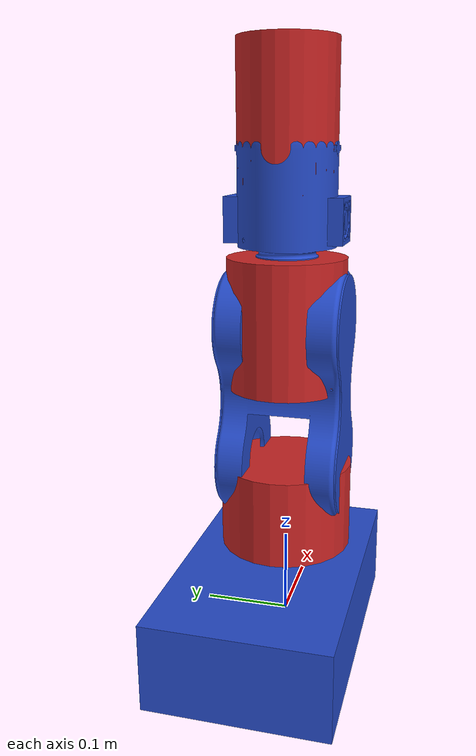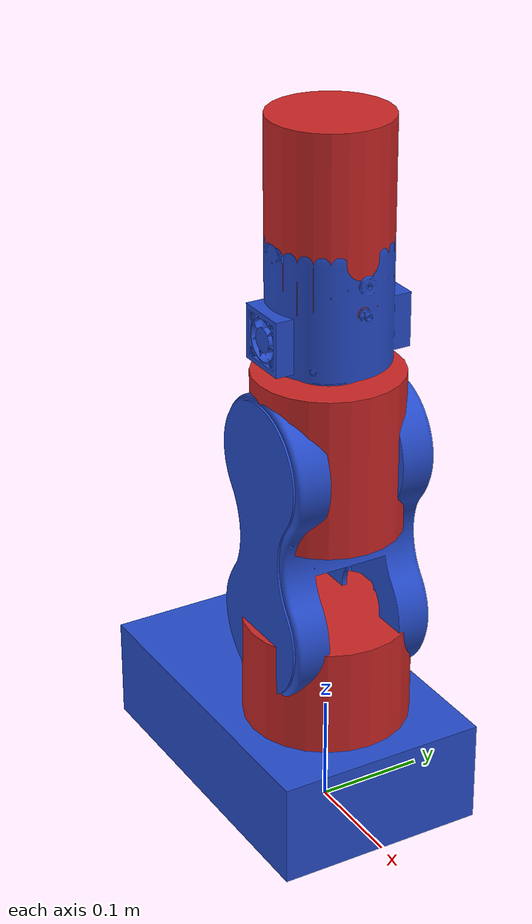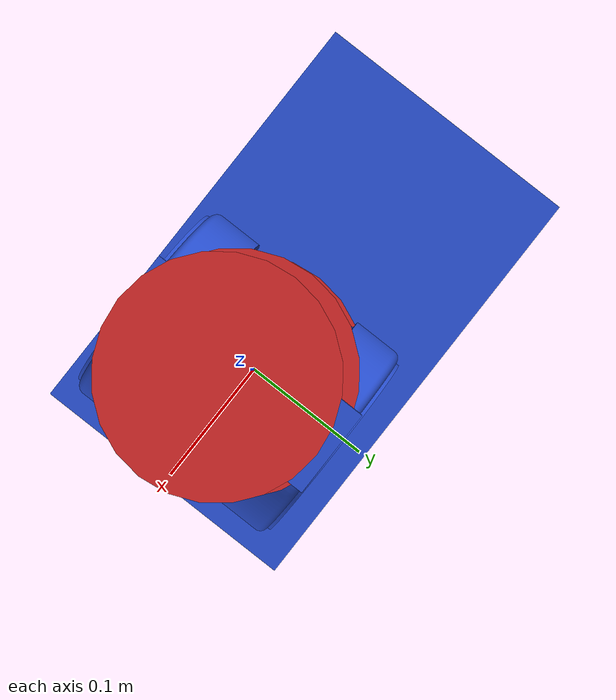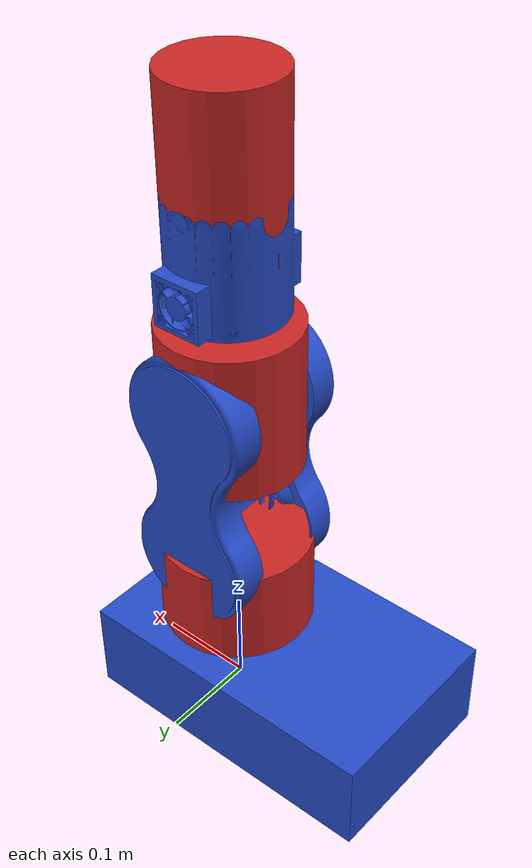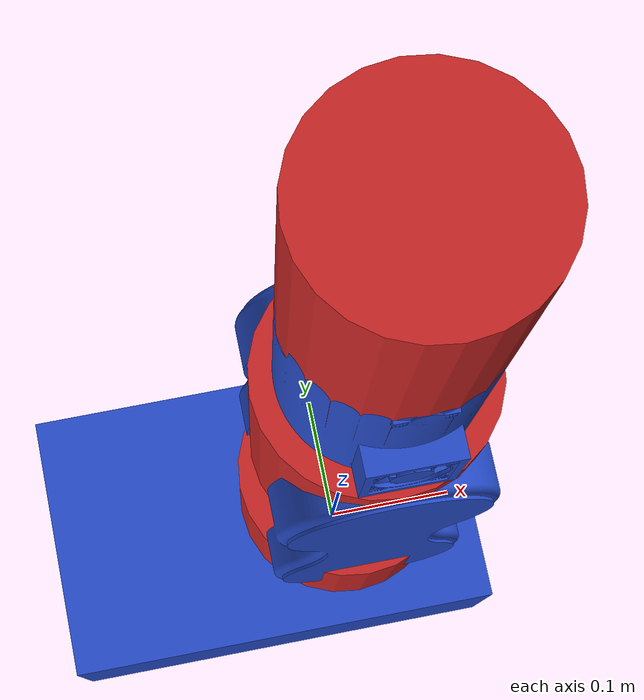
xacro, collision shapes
<?xml version="1.0"?>
<robot name="my_robot" xmlns:xacro="http://www.ros.org/wiki/xacro">

    <!-- CAD meshes are exported from FreeCAD in millimetres; URDF works in metres. -->
    <xacro:property name="mm_to_m" value="0.001" />

    <xacro:property name="base_length" value="0.5" />
    <xacro:property name="base_width" value="0.5" />
    <xacro:property name="link_1_length" value="0.3" />
    <xacro:property name="link_1_radius" value="0.1" />
    <xacro:property name="link_2_length" value="0.5" />
    <xacro:property name="link_2_radius" value="0.1" />
    <xacro:property name="base_height" value="0.2" />
    <xacro:property name="link_3_length" value="0.2" />
    <xacro:property name="link_3_radius" value="0.1" />
    <xacro:property name="link_4_length" value="0.3" />
    <xacro:property name="link_4_radius" value="0.12" />
    <xacro:property name="wrist_2_link_length" value="0.08" />
    <xacro:property name="wrist_2_link_width" value="0.06" />
    <xacro:property name="wrist_2_link_height" value="0.04" />
    <xacro:property name="finger_length" value="0.06" />
    <xacro:property name="finger_width" value="0.01" />
    <xacro:property name="finger_height" value="0.02" />
    <xacro:property name="finger_gap" value="0.025" />
    <xacro:property name="finger_travel" value="0.02" />
    <xacro:property name="tool_link_length" value="0.08" />
    <xacro:property name="tool_link_radius" value="0.05" />

    <link name="base_link">
        <visual>
            <geometry>
                <mesh filename="package://robot_description/meshes/assemblybase.stl" scale="${mm_to_m} ${mm_to_m} ${mm_to_m}" />
            </geometry>
            <origin xyz="0 0 0" rpy="0 0 0" />
            <material name="blue" />
        </visual>
        <collision>
            <geometry>
                <box size="0.3236 0.2000 0.0980"/>
            </geometry>
            <origin xyz="-0.0618 0.0000 0.0490" rpy="0 0 0" />
        </collision>
    </link>

    <link name="link_1">
        <visual>
            <geometry>
                <mesh filename="package://robot_description/meshes/assemblyart1.stl" scale="${mm_to_m} ${mm_to_m} ${mm_to_m}" />
            </geometry>
            <origin xyz="0 0 0" rpy="0 0 0" />
            <material name="red" />
        </visual>
        <collision>
            <geometry>
                <cylinder length="0.1500" radius="0.0770" />
            </geometry>
            <origin xyz="0 0 0.0450" rpy="0 0 0" />
        </collision>
    </link>

    <link name="link_2">
        <visual>
            <geometry>
                <mesh filename="package://robot_description/meshes/assemblyart2.stl" scale="${mm_to_m} ${mm_to_m} ${mm_to_m}" />
            </geometry>
            <origin xyz="0 0 0" rpy="1.5708 0 3.1416" />
            <material name="blue" />
        </visual>
        <collision>
            <geometry>
                <mesh filename="package://robot_description/meshes/assemblyart2.stl" scale="${mm_to_m} ${mm_to_m} ${mm_to_m}" />
            </geometry>
            <origin xyz="0 0 0" rpy="1.5708 0 3.1416" />
        </collision>
    </link>

    <link name="link_3">
        <visual>
            <geometry>
                <mesh filename="package://robot_description/meshes/assemblyart3.stl" scale="${mm_to_m} ${mm_to_m} ${mm_to_m}" />
            </geometry>
            <origin xyz="0 0 0.0815" rpy="0 3.1416 0" />
            <material name="red" />
        </visual>
        <collision>
            <geometry>
                <cylinder length="0.1490" radius="0.0680" />
            </geometry>
            <origin xyz="0 0 0.0035" rpy="0 0 0" />
        </collision>
    </link>

    <link name="link_4">
        <visual>
            <geometry>
                <mesh filename="package://robot_description/meshes/assemblyart4.stl" scale="${mm_to_m} ${mm_to_m} ${mm_to_m}" />
            </geometry>
            <origin xyz="0 0 0" rpy="0 0 0" />
            <material name="blue" />
        </visual>
        <collision>
            <geometry>
                <mesh filename="package://robot_description/meshes/assemblyart4.stl" scale="${mm_to_m} ${mm_to_m} ${mm_to_m}" />
            </geometry>
            <origin xyz="0 0 0" rpy="0 0 0" />
        </collision>
    </link>

    <link name="wrist_2_link">
        <visual>
            <geometry>
                <mesh filename="package://robot_description/meshes/assemblyart5_6.stl" scale="${mm_to_m} ${mm_to_m} ${mm_to_m}" />
            </geometry>
            <origin xyz="0 0 0" rpy="0 0 1.5708" />
            <material name="red" />
        </visual>
        <collision>
            <geometry>
                <cylinder length="0.1585" radius="0.0550" />
            </geometry>
            <origin xyz="0 0 0.0323" rpy="0 0 0" />
        </collision>
    </link>

    <link name="wrist_link" />

    <link name="ee_link" />

    <joint name="base_yaw_joint" type="revolute">
        <parent link="base_link" />
        <child link="link_1" />
        <origin xyz="0 0 0.079" rpy="0 0 0" />
        <axis xyz="0 0 1" />
        <limit lower="-3.1416" upper="3.1416" effort="20" velocity="1.5"/>
    </joint>

    <joint name="shoulder_roll_joint" type="revolute">
        <parent link="link_1" />
        <child link="link_2" />
        <origin xyz="0 -0.068 0.123" rpy="0 0 0" />
        <axis xyz="0 1 0" />
        <limit lower="-1.7200" upper="1.7200" effort="20" velocity="1.5"/>
    </joint>

    <joint name="elbow_roll_joint" type="revolute">
        <parent link="link_2" />
        <child link="link_3" />
        <origin xyz="0 0.068 0.16" rpy="0 0 0" />
        <axis xyz="0 1 0" />
        <limit lower="-1.7200" upper="1.7200" effort="20" velocity="1.5"/>
    </joint>

    <joint name="wrist_yaw_joint" type="revolute">
        <parent link="link_3" />
        <child link="link_4" />
        <origin xyz="0 0 0.0825" rpy="0 0 0" />
        <axis xyz="0 0 1" />
        <limit lower="-3.1416" upper="3.1416" effort="15" velocity="1.5"/>
    </joint>

    <joint name="wrist_roll_joint" type="revolute">
        <parent link="link_4" />
        <child link="wrist_link" />
        <origin xyz="0 0 0.1115" rpy="0 0 0" />
        <axis xyz="0 1 0" />
        <limit lower="-1.410" upper="1.410" effort="8" velocity="2.0"/>
    </joint>

    <joint name="tool_yaw_joint" type="revolute">
        <parent link="wrist_link" />
        <child link="wrist_2_link" />
        <origin xyz="0 0 0" rpy="0 0 0" />
        <axis xyz="0 0 1" />
        <limit lower="-3.1416" upper="3.1416" effort="8" velocity="2.0"/>
    </joint>

    <joint name="ee_fixed_joint" type="fixed">
        <parent link="wrist_2_link" />
        <child link="ee_link" />
        <origin xyz="0 0 0.1115" rpy="0 0 0" />
    </joint>

    <link name="tool_link" />

    <joint name="tool_fixed_joint" type="fixed">
        <parent link="ee_link" />
        <child link="tool_link" />
        <origin xyz="0 0 0" rpy="0 0 0" />
    </joint>

</robot>
